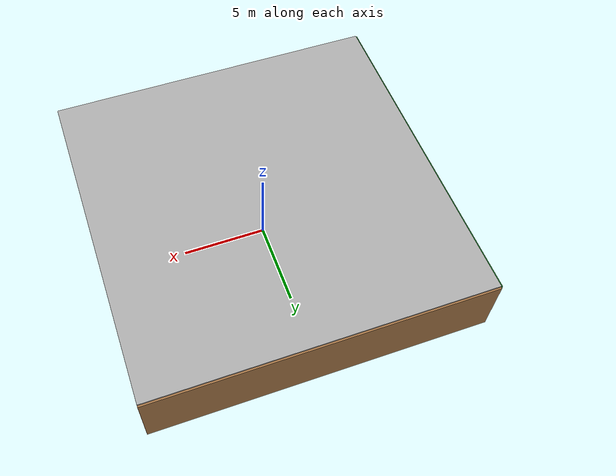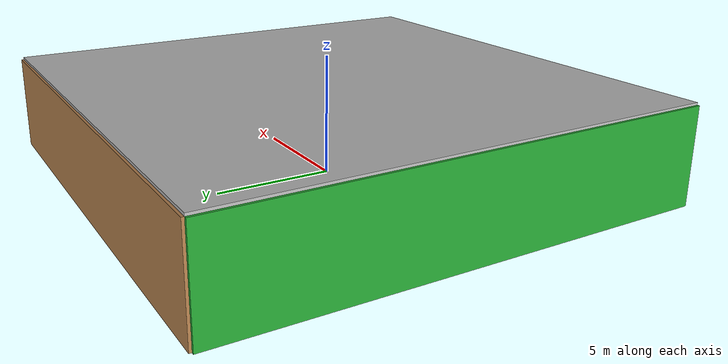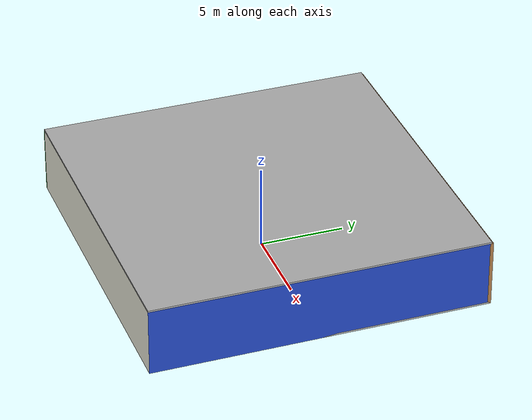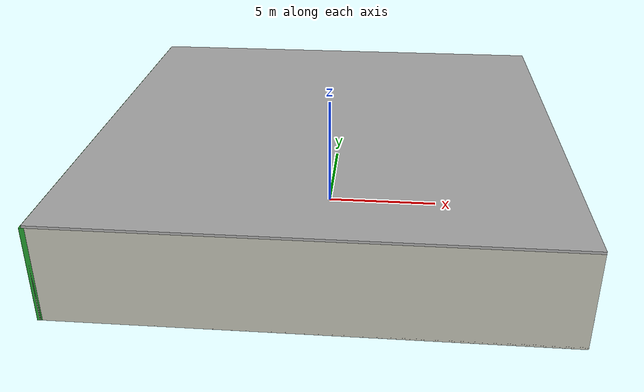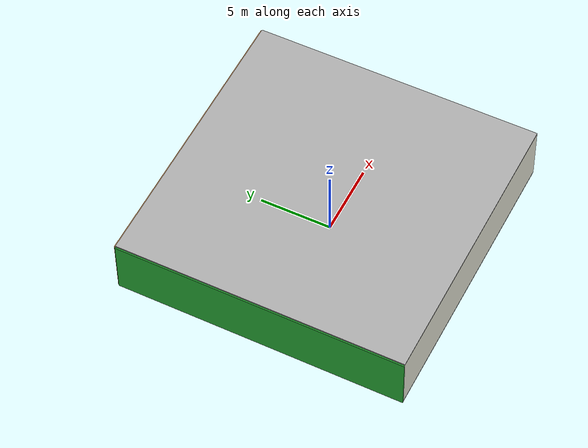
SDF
<sdf version="1.4">
 <world name="default">
  <physics type="ode">
   <max_step_size>0.001</max_step_size>
   <real_time_factor>1</real_time_factor>
   <real_time_update_rate>1000</real_time_update_rate>
   <gravity>0 0 -9.8</gravity>
  </physics>
  <scene><ambient>0.4 0.4 0.4 1</ambient><background>0.7 0.7 0.7 1</background><shadows>1</shadows></scene>
  <model name="Surrounding">
   <static>1</static>
   <link name="Ceiling">
    <collision name="Ceiling_Collision"><geometry><box><size>20 20 0.1</size></box></geometry></collision>
    <visual name="Ceiling_Visual">
     <geometry><box><size>20 20 0.1</size></box></geometry>
     <material>
      <script><uri>file://media/materials/scripts/gazebo.material</uri><name>Gazebo/Pioneer2Body</name></script>
     </material>
    </visual>
    <pose>0 0 4.05 0 0 0</pose>
   </link>
   <link name="Wall_South">
    <collision name="Wall_South_Collision">
     <geometry><box><size>20 0 4</size></box></geometry>
     <pose>0 0 2 0 -0 0</pose>
    </collision>
    <visual name="Wall_South_Visual">
     <pose>0 0 2 0 -0 0</pose>
     <geometry><box><size>20 0 4</size></box></geometry>
     <material>
      <script><uri>file://media/materials/scripts/gazebo.material</uri><name>Gazebo/PaintedWall</name></script>
     </material>
    </visual>
    <velocity_decay><linear>0</linear><angular>0</angular></velocity_decay>
    <pose>0 -10 0 0 -0 0</pose>
   </link>
   <link name="Wall_East">
    <collision name="Wall_21_Collision">
     <geometry><box><size>20 0 4</size></box></geometry>
     <pose>0 0 2 0 -0 0</pose>
    </collision>
    <visual name="Wall_21_Visual">
     <pose>0 0 2 0 -0 0</pose>
     <geometry><box><size>20 0 4</size></box></geometry>
     <material>
      <script><uri>file://media/materials/scripts/gazebo.material</uri><name>Gazebo/BlueLaser</name></script>
     </material>
    </visual>
    <velocity_decay><linear>0</linear><angular>0</angular></velocity_decay>
    <pose>10 0 0 0 -0 1.5708</pose>
   </link>
   <link name="Wall_North">
    <collision name="Wall_22_Collision">
     <geometry><box><size>20 0.2 4</size></box></geometry>
     <pose>0 0 2 0 -0 0</pose>
    </collision>
    <visual name="Wall_22_Visual">
     <pose>0 0 2 0 -0 0</pose>
     <geometry><box><size>20 0.2 4</size></box></geometry>
     <material>
      <script><uri>file://media/materials/scripts/gazebo.material</uri><name>Gazebo/WoodPallet</name></script>
     </material>
    </visual>
    <velocity_decay><linear>0</linear><angular>0</angular></velocity_decay>
    <pose>0 10 0 0 -0 0</pose>
   </link>
   <link name="Wall_West">
    <collision name="Wall_23_Collision">
     <geometry><box><size>20 0.2 4</size></box></geometry>
     <pose>0 0 2 0 -0 0</pose>
    </collision>
    <visual name="Wall_23_Visual">
     <pose>0 0 2 0 -0 0</pose>
     <geometry><box><size>20 0.2 4</size></box></geometry>
     <material>
      <script><uri>file://media/materials/scripts/gazebo.material</uri><name>Gazebo/Green</name></script>
     </material>
    </visual>
    <velocity_decay><linear>0</linear><angular>0</angular></velocity_decay>
    <pose>-10 0 0 0 0 -1.5708</pose>
   </link>
   <link name="Ground_link">
    <collision name="collision">
     <pose>0 0 .05 0 -0 0</pose>
     <geometry><box><size>20 20 0.1</size></box></geometry>
    </collision>
    <visual name="visual">
     <pose>0 0 .05 0 -0 0</pose>
     <geometry><box><size>20 20 0.1</size></box></geometry>
     <material>
      <script><uri>file://media/materials/scripts/gazebo.material</uri><name>Gazebo/PioneerBody</name></script>
     </material>
    </visual>
   </link>
   <static>1</static>
  </model>
  <spherical_coordinates>
   <surface_model>EARTH_WGS84</surface_model>
   <latitude_deg>0</latitude_deg>
   <longitude_deg>0</longitude_deg>
   <elevation>0</elevation>
   <heading_deg>0</heading_deg>
  </spherical_coordinates>
  <light name="lightball_0" type="diffuse">
   <diffuse>0.8 0.8 0.8 1</diffuse>
   <specular>0.2 0.2 0.2 1</specular>
   <attenuation>
    <range>100</range>
    <constant>0.7</constant>
    <linear>0.01</linear>
    <quadratic>0.001</quadratic>
   </attenuation>
   <direction>-0.5 0.1 -0.9</direction>
   <pose>-8.04347709514 -7.3820715315 3.86138525083 0 0 0</pose>
  </light>
  <light name="lightball_1" type="diffuse">
   <diffuse>0.8 0.8 0.8 1</diffuse>
   <specular>0.2 0.2 0.2 1</specular>
   <attenuation>
    <range>100</range>
    <constant>0.7</constant>
    <linear>0.01</linear>
    <quadratic>0.001</quadratic>
   </attenuation>
   <direction>-0.5 0.1 -0.9</direction>
   <pose>0.709428622349 -4.08818796875 2.90713428223 0 0 0</pose>
  </light>
  <include><uri>model://table</uri><pose>-6.86117931453 -7.79553638209 0 0 0 3.1011637221</pose></include>
  <include>
   <uri>model://construction_cone</uri>
   <pose>-5.41749301894 -5.17683018265 0 0 0 2.48120165637</pose>
  </include>
 </world>
</sdf>

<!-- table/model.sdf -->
<sdf version="1.5">
  <model name="table">
    <static>true</static>
    <link name="link">
      <collision name="surface">
        <pose>0 0 1.0 0 0 0</pose>
        <geometry>
          <box>
            <size>1.5 0.8 0.03</size>
          </box>
        </geometry>
        <surface>
          <friction>
            <ode>
              <mu>0.6</mu>
              <mu2>0.6</mu2>
            </ode>
          </friction>
        </surface>
      </collision>
      <visual name="visual1">
        <pose>0 0 1.0 0 0 0</pose>
        <geometry>
          <box>
            <size>1.5 0.8 0.03</size>
          </box>
        </geometry>
        <material>
          <script>
            <uri>model://media/materials/scripts/gazebo.material</uri>
            <name>Gazebo/Wood</name>
          </script>
        </material>
      </visual>
      <collision name="front_left_leg">
        <pose>0.68 0.38 0.5 0 0 0</pose>
        <geometry>
          <cylinder>
            <radius>0.02</radius>
            <length>1.0</length>
          </cylinder>
        </geometry>
      </collision>
      <visual name="front_left_leg">
        <pose>0.68 0.38 0.5 0 0 0</pose>
        <geometry>
          <cylinder>
            <radius>0.02</radius>
            <length>1.0</length>
          </cylinder>
        </geometry>
        <material>
          <script>
            <uri>model://media/materials/scripts/gazebo.material</uri>
            <name>Gazebo/Grey</name>
          </script>
        </material>
      </visual>
      <collision name="front_right_leg">
        <pose>0.68 -0.38 0.5 0 0 0</pose>
        <geometry>
          <cylinder>
            <radius>0.02</radius>
            <length>1.0</length>
          </cylinder>
        </geometry>
      </collision>
      <visual name="front_right_leg">
        <pose>0.68 -0.38 0.5 0 0 0</pose>
        <geometry>
          <cylinder>
            <radius>0.02</radius>
            <length>1.0</length>
          </cylinder>
        </geometry>
        <material>
          <script>
            <uri>model://media/materials/scripts/gazebo.material</uri>
            <name>Gazebo/Grey</name>
          </script>
        </material>
      </visual>
      <collision name="back_right_leg">
        <pose>-0.68 -0.38 0.5 0 0 0</pose>
        <geometry>
          <cylinder>
            <radius>0.02</radius>
            <length>1.0</length>
          </cylinder>
        </geometry>
      </collision>
      <visual name="back_right_leg">
        <pose>-0.68 -0.38 0.5 0 0 0</pose>
        <geometry>
          <cylinder>
            <radius>0.02</radius>
            <length>1.0</length>
          </cylinder>
        </geometry>
        <material>
          <script>
            <uri>model://media/materials/scripts/gazebo.material</uri>
            <name>Gazebo/Grey</name>
          </script>
        </material>
      </visual>
      <collision name="back_left_leg">
        <pose>-0.68 0.38 0.5 0 0 0</pose>
        <geometry>
          <cylinder>
            <radius>0.02</radius>
            <length>1.0</length>
          </cylinder>
        </geometry>
      </collision>
      <visual name="back_left_leg">
        <pose>-0.68 0.38 0.5 0 0 0</pose>
        <geometry>
          <cylinder>
            <radius>0.02</radius>
            <length>1.0</length>
          </cylinder>
        </geometry>
        <material>
          <script>
            <uri>model://media/materials/scripts/gazebo.material</uri>
            <name>Gazebo/Grey</name>
          </script>
        </material>
      </visual>
    </link>
  </model>
</sdf>

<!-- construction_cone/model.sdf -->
<sdf version="1.5">
  <model name="Construction Cone">
    <link name="link">
      <collision name="collision">
        <geometry>
          <mesh>
            <scale>10 10 10</scale>
            <uri>file://isr-testbed/construction_cone/meshes/construction_cone.dae</uri>
          </mesh>
        </geometry>
      </collision>
      <visual name="visual">
        <geometry>
          <mesh>
            <scale>10 10 10</scale>
            <uri>file://isr-testbed/construction_cone/meshes/construction_cone.dae</uri>
          </mesh>
        </geometry>
      </visual>
    </link>
  </model>
</sdf>
